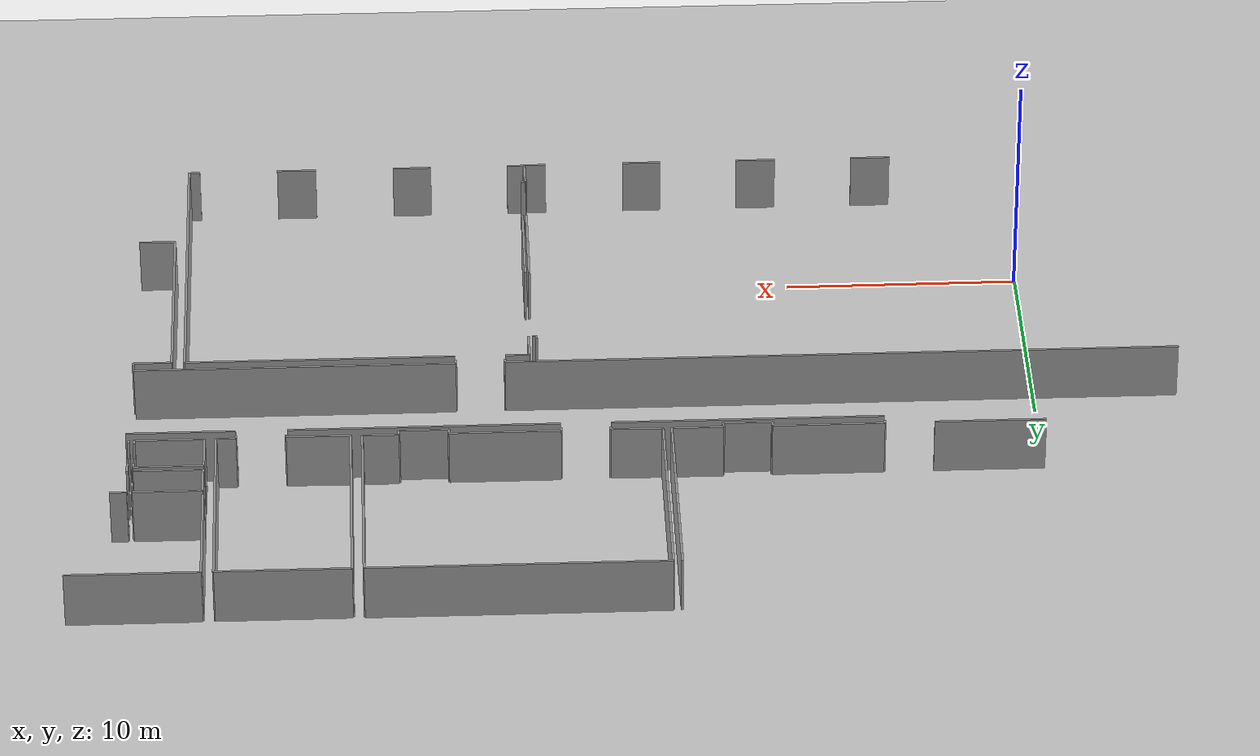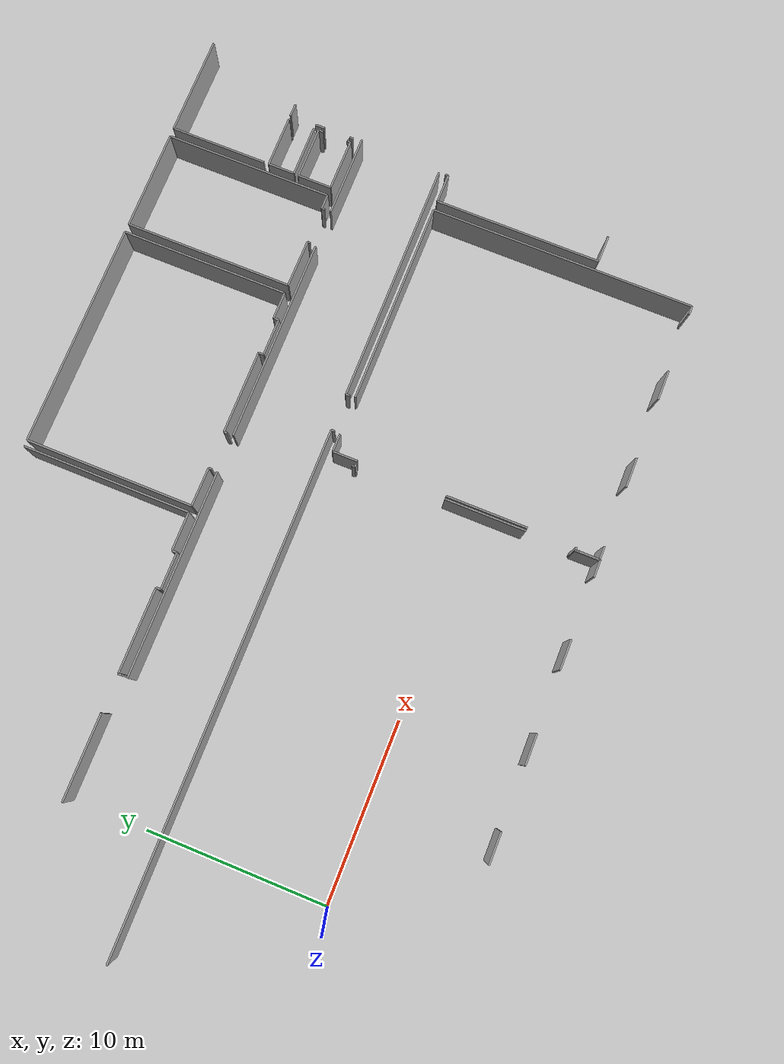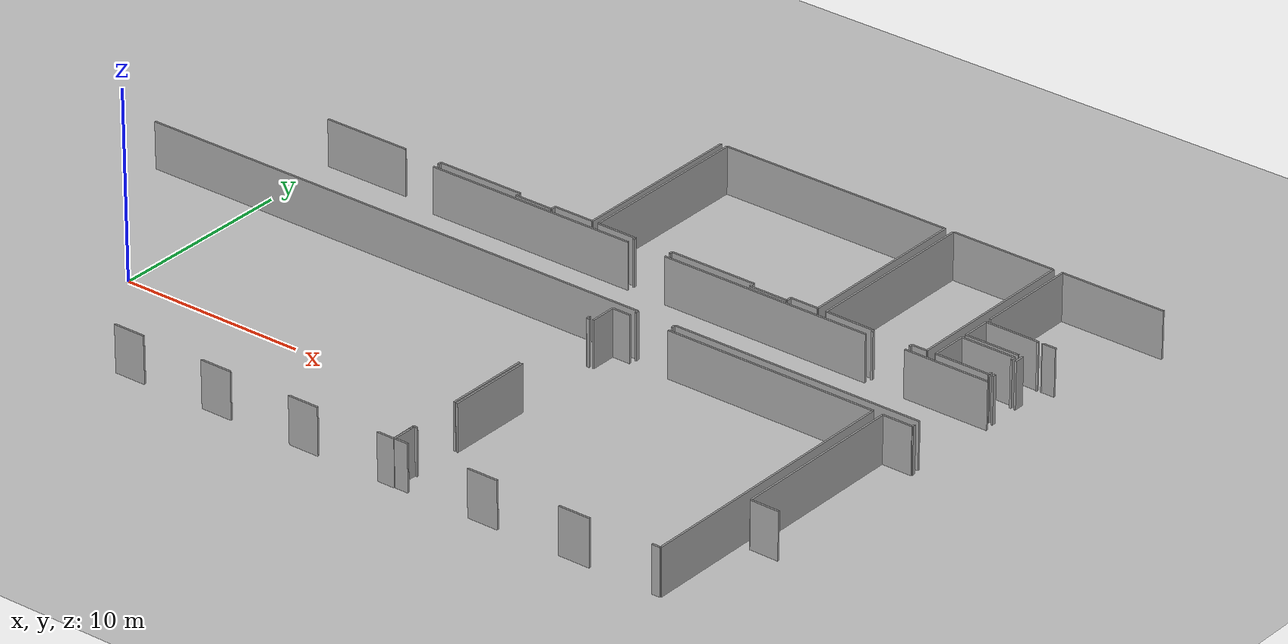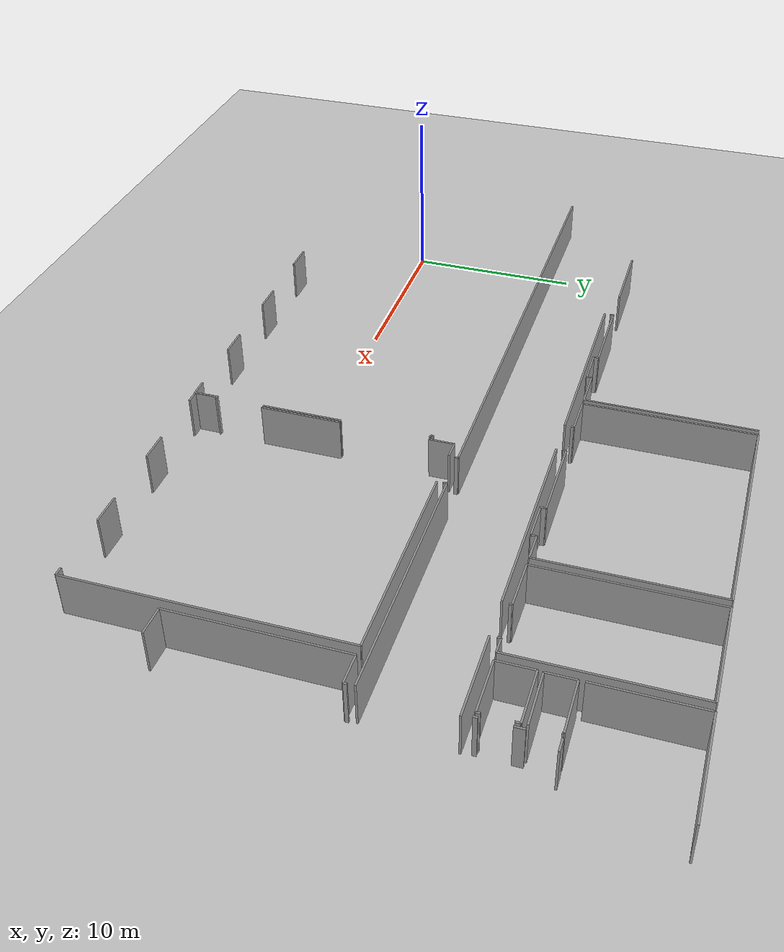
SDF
<sdf version="1.6">
 <world name="default">
  <model name="ground_plane">
   <static>1</static>
   <link name="link">
    <collision name="collision">
     <geometry><plane><normal>0 0 1</normal><size>100 100</size></plane></geometry>
     <surface><friction><ode><mu>100</mu><mu2>50</mu2></ode></friction></surface>
    </collision>
    <visual name="visual">
     <cast_shadows>0</cast_shadows>
     <geometry><plane><normal>0 0 1</normal><size>100 100</size></plane></geometry>
     <material>
      <script><uri>file://media/materials/scripts/gazebo.material</uri><name>Gazebo/Grey</name></script>
     </material>
    </visual>
   </link>
  </model>
  <model name="0510032194_A_40_1_102">
   <static>1</static>
   <link name="Wall_106">
    <collision name="Wall_106_Collision">
     <geometry><box><size>9.50472897386 0.1 2.5</size></box></geometry>
     <pose>4.75236448693 0 1.25 0 0 0</pose>
    </collision>
    <visual name="Wall_106_Visual">
     <pose>4.75236448693 0 1.25 0 0 0</pose>
     <geometry><box><size>9.50472897386 0.1 2.5</size></box></geometry>
     <material>
      <script><uri>file://media/materials/scripts/gazebo.material</uri><name>Gazebo/Grey</name></script>
      <ambient>1 1 1 1</ambient>
     </material>
    </visual>
    <pose>83.4700752568 -0.146064273365 0 0 0 -1.57079632679</pose>
   </link>
   <link name="Wall_107">
    <collision name="Wall_107_Collision">
     <geometry><box><size>2.18346384623 0.1 2.5</size></box></geometry>
     <pose>1.09173192312 0 1.25 0 0 0</pose>
    </collision>
    <visual name="Wall_107_Visual">
     <pose>1.09173192312 0 1.25 0 0 0</pose>
     <geometry><box><size>2.18346384623 0.1 2.5</size></box></geometry>
     <material>
      <script><uri>file://media/materials/scripts/gazebo.material</uri><name>Gazebo/Grey</name></script>
      <ambient>1 1 1 1</ambient>
     </material>
    </visual>
    <pose>83.4700752568 -9.65079324723 0 0 0 3.14159265359</pose>
   </link>
   <link name="Wall_108">
    <collision name="Wall_108_Collision">
     <geometry><box><size>0.278653513678 0.1 2.5</size></box></geometry>
     <pose>0.139326756839 0 1.25 0 0 0</pose>
    </collision>
    <visual name="Wall_108_Visual">
     <pose>0.139326756839 0 1.25 0 0 0</pose>
     <geometry><box><size>0.278653513678 0.1 2.5</size></box></geometry>
     <material>
      <script><uri>file://media/materials/scripts/gazebo.material</uri><name>Gazebo/Grey</name></script>
      <ambient>1 1 1 1</ambient>
     </material>
    </visual>
    <pose>81.2866114106 -9.65079324723 0 0 0 -1.57079632679</pose>
   </link>
   <link name="Wall_109">
    <collision name="Wall_109_Collision">
     <geometry><box><size>2.06663785213 0.1 2.5</size></box></geometry>
     <pose>1.03331892607 0 1.25 0 0 0</pose>
    </collision>
    <visual name="Wall_109_Visual">
     <pose>1.03331892607 0 1.25 0 0 0</pose>
     <geometry><box><size>2.06663785213 0.1 2.5</size></box></geometry>
     <material>
      <script><uri>file://media/materials/scripts/gazebo.material</uri><name>Gazebo/Grey</name></script>
      <ambient>1 1 1 1</ambient>
     </material>
    </visual>
    <pose>81.2866114106 -9.92944676091 0 0 0 3.14159265359</pose>
   </link>
   <link name="Wall_110">
    <collision name="Wall_110_Collision">
     <geometry><box><size>0.269119292179 0.1 2.5</size></box></geometry>
     <pose>0.13455964609 0 1.25 0 0 0</pose>
    </collision>
    <visual name="Wall_110_Visual">
     <pose>0.13455964609 0 1.25 0 0 0</pose>
     <geometry><box><size>0.269119292179 0.1 2.5</size></box></geometry>
     <material>
      <script><uri>file://media/materials/scripts/gazebo.material</uri><name>Gazebo/Grey</name></script>
      <ambient>1 1 1 1</ambient>
     </material>
    </visual>
    <pose>79.2199735584 -9.92944676091 0 0 0 1.57079632679</pose>
   </link>
   <link name="Wall_111">
    <collision name="Wall_111_Collision">
     <geometry><box><size>4.73888945388 0.1 2.5</size></box></geometry>
     <pose>2.36944472694 0 1.25 0 0 0</pose>
    </collision>
    <visual name="Wall_111_Visual">
     <pose>2.36944472694 0 1.25 0 0 0</pose>
     <geometry><box><size>4.73888945388 0.1 2.5</size></box></geometry>
     <material>
      <script><uri>file://media/materials/scripts/gazebo.material</uri><name>Gazebo/Grey</name></script>
      <ambient>1 1 1 1</ambient>
     </material>
    </visual>
    <pose>79.2199735584 -9.66032746873 0 0 0 3.14159265359</pose>
   </link>
   <link name="Wall_112">
    <collision name="Wall_112_Collision">
     <geometry><box><size>0.182675683921 0.1 2.5</size></box></geometry>
     <pose>0.0913378419607 0 1.25 0 0 0</pose>
    </collision>
    <visual name="Wall_112_Visual">
     <pose>0.0913378419607 0 1.25 0 0 0</pose>
     <geometry><box><size>0.182675683921 0.1 2.5</size></box></geometry>
     <material>
      <script><uri>file://media/materials/scripts/gazebo.material</uri><name>Gazebo/Grey</name></script>
      <ambient>1 1 1 1</ambient>
     </material>
    </visual>
    <pose>74.4810841045 -9.66032746873 0 0 0 -1.57079632679</pose>
   </link>
   <link name="Wall_114">
    <collision name="Wall_114_Collision">
     <geometry><box><size>4.72401606834 0.1 2.5</size></box></geometry>
     <pose>2.36200803417 0 1.25 0 0 0</pose>
    </collision>
    <visual name="Wall_114_Visual">
     <pose>2.36200803417 0 1.25 0 0 0</pose>
     <geometry><box><size>4.72401606834 0.1 2.5</size></box></geometry>
     <material>
      <script><uri>file://media/materials/scripts/gazebo.material</uri><name>Gazebo/Grey</name></script>
      <ambient>1 1 1 1</ambient>
     </material>
    </visual>
    <pose>72.3759279976 -9.66998881318 0 0 0 3.14159265359</pose>
   </link>
   <link name="Wall_118">
    <collision name="Wall_118_Collision">
     <geometry><box><size>9.49888131801 0.1 2.5</size></box></geometry>
     <pose>4.74944065901 0 1.25 0 0 0</pose>
    </collision>
    <visual name="Wall_118_Visual">
     <pose>4.74944065901 0 1.25 0 0 0</pose>
     <geometry><box><size>9.49888131801 0.1 2.5</size></box></geometry>
     <material>
      <script><uri>file://media/materials/scripts/gazebo.material</uri><name>Gazebo/Grey</name></script>
      <ambient>1 1 1 1</ambient>
     </material>
    </visual>
    <pose>83.8347910099 -9.65270009153 0 0 0 1.57079632679</pose>
   </link>
   <link name="Wall_119">
    <collision name="Wall_119_Collision">
     <geometry><box><size>12.6585223228 0.1 2.5</size></box></geometry>
     <pose>6.3292611614 0 1.25 0 0 0</pose>
    </collision>
    <visual name="Wall_119_Visual">
     <pose>6.3292611614 0 1.25 0 0 0</pose>
     <geometry><box><size>12.6585223228 0.1 2.5</size></box></geometry>
     <material>
      <script><uri>file://media/materials/scripts/gazebo.material</uri><name>Gazebo/Grey</name></script>
      <ambient>1 1 1 1</ambient>
     </material>
    </visual>
    <pose>83.8347910099 -0.153818773518 0 0 0 0.0</pose>
   </link>
   <link name="Wall_120">
    <collision name="Wall_120_Collision">
     <geometry><box><size>9.48782162107 0.1 2.5</size></box></geometry>
     <pose>4.74391081054 0 1.25 0 0 0</pose>
    </collision>
    <visual name="Wall_120_Visual">
     <pose>4.74391081054 0 1.25 0 0 0</pose>
     <geometry><box><size>9.48782162107 0.1 2.5</size></box></geometry>
     <material>
      <script><uri>file://media/materials/scripts/gazebo.material</uri><name>Gazebo/Grey</name></script>
      <ambient>1 1 1 1</ambient>
     </material>
    </visual>
    <pose>96.4933133327 -0.153818773518 0 0 0 -1.57079632679</pose>
   </link>
   <link name="Wall_121">
    <collision name="Wall_121_Collision">
     <geometry><box><size>1.53806061222 0.1 2.5</size></box></geometry>
     <pose>0.769030306112 0 1.25 0 0 0</pose>
    </collision>
    <visual name="Wall_121_Visual">
     <pose>0.769030306112 0 1.25 0 0 0</pose>
     <geometry><box><size>1.53806061222 0.1 2.5</size></box></geometry>
     <material>
      <script><uri>file://media/materials/scripts/gazebo.material</uri><name>Gazebo/Grey</name></script>
      <ambient>1 1 1 1</ambient>
     </material>
    </visual>
    <pose>96.4933133327 -9.64164039459 0 0 0 3.14159265359</pose>
   </link>
   <link name="Wall_122">
    <collision name="Wall_122_Collision">
     <geometry><box><size>0.298484694396 0.1 2.5</size></box></geometry>
     <pose>0.149242347198 0 1.25 0 0 0</pose>
    </collision>
    <visual name="Wall_122_Visual">
     <pose>0.149242347198 0 1.25 0 0 0</pose>
     <geometry><box><size>0.298484694396 0.1 2.5</size></box></geometry>
     <material>
      <script><uri>file://media/materials/scripts/gazebo.material</uri><name>Gazebo/Grey</name></script>
      <ambient>1 1 1 1</ambient>
     </material>
    </visual>
    <pose>94.9552527204 -9.64164039459 0 0 0 -1.57079632679</pose>
   </link>
   <link name="Wall_123">
    <collision name="Wall_123_Collision">
     <geometry><box><size>2.10502898403 0.1 2.5</size></box></geometry>
     <pose>1.05251449202 0 1.25 0 0 0</pose>
    </collision>
    <visual name="Wall_123_Visual">
     <pose>1.05251449202 0 1.25 0 0 0</pose>
     <geometry><box><size>2.10502898403 0.1 2.5</size></box></geometry>
     <material>
      <script><uri>file://media/materials/scripts/gazebo.material</uri><name>Gazebo/Grey</name></script>
      <ambient>1 1 1 1</ambient>
     </material>
    </visual>
    <pose>94.9552527204 -9.94012508899 0 0 0 3.14159265359</pose>
   </link>
   <link name="Wall_124">
    <collision name="Wall_124_Collision">
     <geometry><box><size>0.289331841757 0.1 2.5</size></box></geometry>
     <pose>0.144665920879 0 1.25 0 0 0</pose>
    </collision>
    <visual name="Wall_124_Visual">
     <pose>0.144665920879 0 1.25 0 0 0</pose>
     <geometry><box><size>0.289331841757 0.1 2.5</size></box></geometry>
     <material>
      <script><uri>file://media/materials/scripts/gazebo.material</uri><name>Gazebo/Grey</name></script>
      <ambient>1 1 1 1</ambient>
     </material>
    </visual>
    <pose>92.8502237364 -9.94012508899 0 0 0 1.57079632679</pose>
   </link>
   <link name="Wall_125">
    <collision name="Wall_125_Collision">
     <geometry><box><size>4.72007525679 0.1 2.5</size></box></geometry>
     <pose>2.36003762839 0 1.25 0 0 0</pose>
    </collision>
    <visual name="Wall_125_Visual">
     <pose>2.36003762839 0 1.25 0 0 0</pose>
     <geometry><box><size>4.72007525679 0.1 2.5</size></box></geometry>
     <material>
      <script><uri>file://media/materials/scripts/gazebo.material</uri><name>Gazebo/Grey</name></script>
      <ambient>1 1 1 1</ambient>
     </material>
    </visual>
    <pose>92.8502237364 -9.65079324723 0 0 0 3.14159265359</pose>
   </link>
   <link name="Wall_126">
    <collision name="Wall_126_Collision">
     <geometry><box><size>0.190938675887 0.1 2.5</size></box></geometry>
     <pose>0.0954693379437 0 1.25 0 0 0</pose>
    </collision>
    <visual name="Wall_126_Visual">
     <pose>0.0954693379437 0 1.25 0 0 0</pose>
     <geometry><box><size>0.190938675887 0.1 2.5</size></box></geometry>
     <material>
      <script><uri>file://media/materials/scripts/gazebo.material</uri><name>Gazebo/Grey</name></script>
      <ambient>1 1 1 1</ambient>
     </material>
    </visual>
    <pose>88.1301484796 -9.65079324723 0 0 0 -1.57079632679</pose>
   </link>
   <link name="Wall_127">
    <collision name="Wall_127_Collision">
     <geometry><box><size>0.160937658904 0.1 2.5</size></box></geometry>
     <pose>0.0804688294518 0 1.25 0 0 0</pose>
    </collision>
    <visual name="Wall_127_Visual">
     <pose>0.0804688294518 0 1.25 0 0 0</pose>
     <geometry><box><size>0.160937658904 0.1 2.5</size></box></geometry>
     <material>
      <script><uri>file://media/materials/scripts/gazebo.material</uri><name>Gazebo/Grey</name></script>
      <ambient>1 1 1 1</ambient>
     </material>
    </visual>
    <pose>86.0333824875 -9.84173192312 0 0 0 1.57079632679</pose>
   </link>
   <link name="Wall_128">
    <collision name="Wall_128_Collision">
     <geometry><box><size>2.19877096767 0.1 2.5</size></box></geometry>
     <pose>1.09938548383 0 1.25 0 0 0</pose>
    </collision>
    <visual name="Wall_128_Visual">
     <pose>1.09938548383 0 1.25 0 0 0</pose>
     <geometry><box><size>2.19877096767 0.1 2.5</size></box></geometry>
     <material>
      <script><uri>file://media/materials/scripts/gazebo.material</uri><name>Gazebo/Grey</name></script>
      <ambient>1 1 1 1</ambient>
     </material>
    </visual>
    <pose>86.0333824875 -9.68079426421 0 0 0 3.1288150894</pose>
   </link>
   <link name="Wall_129">
    <collision name="Wall_129_Collision">
     <geometry><box><size>9.48515203905 0.1 2.5</size></box></geometry>
     <pose>4.74257601953 0 1.25 0 0 0</pose>
    </collision>
    <visual name="Wall_129_Visual">
     <pose>4.74257601953 0 1.25 0 0 0</pose>
     <geometry><box><size>9.48515203905 0.1 2.5</size></box></geometry>
     <material>
      <script><uri>file://media/materials/scripts/gazebo.material</uri><name>Gazebo/Grey</name></script>
      <ambient>1 1 1 1</ambient>
     </material>
    </visual>
    <pose>96.9794315062 -9.64456422252 0 0 0 1.57079632679</pose>
   </link>
   <link name="Wall_130">
    <collision name="Wall_130_Collision">
     <geometry><box><size>5.65570019323 0.1 2.5</size></box></geometry>
     <pose>2.82785009661 0 1.25 0 0 0</pose>
    </collision>
    <visual name="Wall_130_Visual">
     <pose>2.82785009661 0 1.25 0 0 0</pose>
     <geometry><box><size>5.65570019323 0.1 2.5</size></box></geometry>
     <material>
      <script><uri>file://media/materials/scripts/gazebo.material</uri><name>Gazebo/Grey</name></script>
      <ambient>1 1 1 1</ambient>
     </material>
    </visual>
    <pose>96.9794315062 -0.159412183464 0 0 0 0.0</pose>
   </link>
   <link name="Wall_131">
    <collision name="Wall_131_Collision">
     <geometry><box><size>9.49023695718 0.1 2.5</size></box></geometry>
     <pose>4.74511847859 0 1.25 0 0 0</pose>
    </collision>
    <visual name="Wall_131_Visual">
     <pose>4.74511847859 0 1.25 0 0 0</pose>
     <geometry><box><size>9.49023695718 0.1 2.5</size></box></geometry>
     <material>
      <script><uri>file://media/materials/scripts/gazebo.material</uri><name>Gazebo/Grey</name></script>
      <ambient>1 1 1 1</ambient>
     </material>
    </visual>
    <pose>102.635131699 -0.159412183464 0 0 0 -1.57079632679</pose>
   </link>
   <link name="Wall_132">
    <collision name="Wall_132_Collision">
     <geometry><box><size>0.840791213261 0.1 2.5</size></box></geometry>
     <pose>0.420395606631 0 1.25 0 0 0</pose>
    </collision>
    <visual name="Wall_132_Visual">
     <pose>0.420395606631 0 1.25 0 0 0</pose>
     <geometry><box><size>0.840791213261 0.1 2.5</size></box></geometry>
     <material>
      <script><uri>file://media/materials/scripts/gazebo.material</uri><name>Gazebo/Grey</name></script>
      <ambient>1 1 1 1</ambient>
     </material>
    </visual>
    <pose>102.635131699 -9.64964914065 0 0 0 3.14159265359</pose>
   </link>
   <link name="Wall_133">
    <collision name="Wall_133_Collision">
     <geometry><box><size>0.171997355843 0.1 2.5</size></box></geometry>
     <pose>0.0859986779213 0 1.25 0 0 0</pose>
    </collision>
    <visual name="Wall_133_Visual">
     <pose>0.0859986779213 0 1.25 0 0 0</pose>
     <geometry><box><size>0.171997355843 0.1 2.5</size></box></geometry>
     <material>
      <script><uri>file://media/materials/scripts/gazebo.material</uri><name>Gazebo/Grey</name></script>
      <ambient>1 1 1 1</ambient>
     </material>
    </visual>
    <pose>101.794340486 -9.64964914065 0 0 0 -1.57079632679</pose>
   </link>
   <link name="Wall_134">
    <collision name="Wall_134_Collision">
     <geometry><box><size>0.148098240618 0.1 2.5</size></box></geometry>
     <pose>0.0740491203092 0 1.25 0 0 0</pose>
    </collision>
    <visual name="Wall_134_Visual">
     <pose>0.0740491203092 0 1.25 0 0 0</pose>
     <geometry><box><size>0.148098240618 0.1 2.5</size></box></geometry>
     <material>
      <script><uri>file://media/materials/scripts/gazebo.material</uri><name>Gazebo/Grey</name></script>
      <ambient>1 1 1 1</ambient>
     </material>
    </visual>
    <pose>99.6833367233 -9.82164649649 0 0 0 1.57079632679</pose>
   </link>
   <link name="Wall_135">
    <collision name="Wall_135_Collision">
     <geometry><box><size>2.70406055727 0.1 2.5</size></box></geometry>
     <pose>1.35203027864 0 1.25 0 0 0</pose>
    </collision>
    <visual name="Wall_135_Visual">
     <pose>1.35203027864 0 1.25 0 0 0</pose>
     <geometry><box><size>2.70406055727 0.1 2.5</size></box></geometry>
     <material>
      <script><uri>file://media/materials/scripts/gazebo.material</uri><name>Gazebo/Grey</name></script>
      <ambient>1 1 1 1</ambient>
     </material>
    </visual>
    <pose>99.6833367233 -9.67354825587 0 0 0 3.13087374114</pose>
   </link>
   <link name="Wall_136">
    <collision name="Wall_136_Collision">
     <geometry><box><size>0.216109020645 0.1 2.5</size></box></geometry>
     <pose>0.108054510322 0 1.25 0 0 0</pose>
    </collision>
    <visual name="Wall_136_Visual">
     <pose>0.108054510322 0 1.25 0 0 0</pose>
     <geometry><box><size>0.216109020645 0.1 2.5</size></box></geometry>
     <material>
      <script><uri>file://media/materials/scripts/gazebo.material</uri><name>Gazebo/Grey</name></script>
      <ambient>1 1 1 1</ambient>
     </material>
    </visual>
    <pose>106.305171362 -9.68969287094 0 0 0 1.57079632679</pose>
   </link>
   <link name="Wall_137">
    <collision name="Wall_137_Collision">
     <geometry><box><size>0.534933387572 0.1 2.5</size></box></geometry>
     <pose>0.267466693786 0 1.25 0 0 0</pose>
    </collision>
    <visual name="Wall_137_Visual">
     <pose>0.267466693786 0 1.25 0 0 0</pose>
     <geometry><box><size>0.534933387572 0.1 2.5</size></box></geometry>
     <material>
      <script><uri>file://media/materials/scripts/gazebo.material</uri><name>Gazebo/Grey</name></script>
      <ambient>1 1 1 1</ambient>
     </material>
    </visual>
    <pose>106.305171362 -7.97022780433 0 0 0 1.57079632679</pose>
   </link>
   <link name="Wall_138">
    <collision name="Wall_138_Collision">
     <geometry><box><size>0.0480524763551 0.1 2.5</size></box></geometry>
     <pose>0.0240262381776 0 1.25 0 0 0</pose>
    </collision>
    <visual name="Wall_138_Visual">
     <pose>0.0240262381776 0 1.25 0 0 0</pose>
     <geometry><box><size>0.0480524763551 0.1 2.5</size></box></geometry>
     <material>
      <script><uri>file://media/materials/scripts/gazebo.material</uri><name>Gazebo/Grey</name></script>
      <ambient>1 1 1 1</ambient>
     </material>
    </visual>
    <pose>106.305171362 -5.95965117462 0 0 0 1.57079632679</pose>
   </link>
   <link name="Wall_139">
    <collision name="Wall_139_Collision">
     <geometry><box><size>0.704006915489 0.1 2.5</size></box></geometry>
     <pose>0.352003457744 0 1.25 0 0 0</pose>
    </collision>
    <visual name="Wall_139_Visual">
     <pose>0.352003457744 0 1.25 0 0 0</pose>
     <geometry><box><size>0.704006915489 0.1 2.5</size></box></geometry>
     <material>
      <script><uri>file://media/materials/scripts/gazebo.material</uri><name>Gazebo/Grey</name></script>
      <ambient>1 1 1 1</ambient>
     </material>
    </visual>
    <pose>106.305171362 -5.91159869826 0 0 0 0.0</pose>
   </link>
   <link name="Wall_182">
    <collision name="Wall_182_Collision">
     <geometry><box><size>9.42324316079 0.1 2.5</size></box></geometry>
     <pose>4.71162158039 0 1.25 0 0 0</pose>
    </collision>
    <visual name="Wall_182_Visual">
     <pose>4.71162158039 0 1.25 0 0 0</pose>
     <geometry><box><size>9.42324316079 0.1 2.5</size></box></geometry>
     <material>
      <script><uri>file://media/materials/scripts/gazebo.material</uri><name>Gazebo/Grey</name></script>
      <ambient>1 1 1 1</ambient>
     </material>
    </visual>
    <pose>104.569180311 -24.8459269806 0 0 0 1.57079632679</pose>
   </link>
   <link name="Wall_183">
    <collision name="Wall_183_Collision">
     <geometry><box><size>1.63136885996 0.1 2.5</size></box></geometry>
     <pose>0.815684429981 0 1.25 0 0 0</pose>
    </collision>
    <visual name="Wall_183_Visual">
     <pose>0.815684429981 0 1.25 0 0 0</pose>
     <geometry><box><size>1.63136885996 0.1 2.5</size></box></geometry>
     <material>
      <script><uri>file://media/materials/scripts/gazebo.material</uri><name>Gazebo/Grey</name></script>
      <ambient>1 1 1 1</ambient>
     </material>
    </visual>
    <pose>104.569180311 -15.4226838198 0 0 0 0.0</pose>
   </link>
   <link name="Wall_184">
    <collision name="Wall_184_Collision">
     <geometry><box><size>0.181658700295 0.1 2.5</size></box></geometry>
     <pose>0.0908293501475 0 1.25 0 0 0</pose>
    </collision>
    <visual name="Wall_184_Visual">
     <pose>0.0908293501475 0 1.25 0 0 0</pose>
     <geometry><box><size>0.181658700295 0.1 2.5</size></box></geometry>
     <material>
      <script><uri>file://media/materials/scripts/gazebo.material</uri><name>Gazebo/Grey</name></script>
      <ambient>1 1 1 1</ambient>
     </material>
    </visual>
    <pose>106.200549171 -15.4226838198 0 0 0 1.57079632679</pose>
   </link>
   <link name="Wall_189">
    <collision name="Wall_189_Collision">
     <geometry><box><size>1.55278916179 0.1 2.5</size></box></geometry>
     <pose>0.776394580896 0 1.25 0 0 0</pose>
    </collision>
    <visual name="Wall_189_Visual">
     <pose>0.776394580896 0 1.25 0 0 0</pose>
     <geometry><box><size>1.55278916179 0.1 2.5</size></box></geometry>
     <material>
      <script><uri>file://media/materials/scripts/gazebo.material</uri><name>Gazebo/Grey</name></script>
      <ambient>1 1 1 1</ambient>
     </material>
    </visual>
    <pose>106.121860063 -24.8643598088 0 0 0 3.12972158853</pose>
   </link>
   <link name="Wall_190">
    <collision name="Wall_190_Collision">
     <geometry><box><size>0.762737719923 0.1 2.5</size></box></geometry>
     <pose>0.381368859961 0 1.25 0 0 0</pose>
    </collision>
    <visual name="Wall_190_Visual">
     <pose>0.381368859961 0 1.25 0 0 0</pose>
     <geometry><box><size>0.762737719923 0.1 2.5</size></box></geometry>
     <material>
      <script><uri>file://media/materials/scripts/gazebo.material</uri><name>Gazebo/Grey</name></script>
      <ambient>1 1 1 1</ambient>
     </material>
    </visual>
    <pose>89.1075968677 -30.4234465575 0 0 0 0.0</pose>
   </link>
   <link name="Wall_191">
    <collision name="Wall_191_Collision">
     <geometry><box><size>1.68209091834 0.1 2.5</size></box></geometry>
     <pose>0.841045459168 0 1.25 0 0 0</pose>
    </collision>
    <visual name="Wall_191_Visual">
     <pose>0.841045459168 0 1.25 0 0 0</pose>
     <geometry><box><size>1.68209091834 0.1 2.5</size></box></geometry>
     <material>
      <script><uri>file://media/materials/scripts/gazebo.material</uri><name>Gazebo/Grey</name></script>
      <ambient>1 1 1 1</ambient>
     </material>
    </visual>
    <pose>93.2731618021 -30.4234465575 0 0 0 0.0</pose>
   </link>
   <link name="Wall_192">
    <collision name="Wall_192_Collision">
     <geometry><box><size>1.71336316485 0.1 2.5</size></box></geometry>
     <pose>0.856681582427 0 1.25 0 0 0</pose>
    </collision>
    <visual name="Wall_192_Visual">
     <pose>0.856681582427 0 1.25 0 0 0</pose>
     <geometry><box><size>1.71336316485 0.1 2.5</size></box></geometry>
     <material>
      <script><uri>file://media/materials/scripts/gazebo.material</uri><name>Gazebo/Grey</name></script>
      <ambient>1 1 1 1</ambient>
     </material>
    </visual>
    <pose>98.39316587 -30.4234465575 0 0 0 0.0</pose>
   </link>
   <link name="Wall_193">
    <collision name="Wall_193_Collision">
     <geometry><box><size>0.475312722465 0.1 2.5</size></box></geometry>
     <pose>0.237656361233 0 1.25 0 0 0</pose>
    </collision>
    <visual name="Wall_193_Visual">
     <pose>0.237656361233 0 1.25 0 0 0</pose>
     <geometry><box><size>0.475312722465 0.1 2.5</size></box></geometry>
     <material>
      <script><uri>file://media/materials/scripts/gazebo.material</uri><name>Gazebo/Grey</name></script>
      <ambient>1 1 1 1</ambient>
     </material>
    </visual>
    <pose>103.544442184 -30.4234465575 0 0 0 0.0</pose>
   </link>
   <link name="Wall_194">
    <collision name="Wall_194_Collision">
     <geometry><box><size>15.0226278857 0.1 2.5</size></box></geometry>
     <pose>7.51131394285 0 1.25 0 0 0</pose>
    </collision>
    <visual name="Wall_194_Visual">
     <pose>7.51131394285 0 1.25 0 0 0</pose>
     <geometry><box><size>15.0226278857 0.1 2.5</size></box></geometry>
     <material>
      <script><uri>file://media/materials/scripts/gazebo.material</uri><name>Gazebo/Grey</name></script>
      <ambient>1 1 1 1</ambient>
     </material>
    </visual>
    <pose>104.019754907 -30.4234465575 0 0 0 1.57079632679</pose>
   </link>
   <link name="Wall_195">
    <collision name="Wall_195_Collision">
     <geometry><box><size>11.5328485711 0.1 2.5</size></box></geometry>
     <pose>5.76642428557 0 1.25 0 0 0</pose>
    </collision>
    <visual name="Wall_195_Visual">
     <pose>5.76642428557 0 1.25 0 0 0</pose>
     <geometry><box><size>11.5328485711 0.1 2.5</size></box></geometry>
     <material>
      <script><uri>file://media/materials/scripts/gazebo.material</uri><name>Gazebo/Grey</name></script>
      <ambient>1 1 1 1</ambient>
     </material>
    </visual>
    <pose>104.019754907 -15.4008186718 0 0 0 3.14159265359</pose>
   </link>
   <link name="Wall_196">
    <collision name="Wall_196_Collision">
     <geometry><box><size>1.01698362656 0.1 2.5</size></box></geometry>
     <pose>0.508491813282 0 1.25 0 0 0</pose>
    </collision>
    <visual name="Wall_196_Visual">
     <pose>0.508491813282 0 1.25 0 0 0</pose>
     <geometry><box><size>1.01698362656 0.1 2.5</size></box></geometry>
     <material>
      <script><uri>file://media/materials/scripts/gazebo.material</uri><name>Gazebo/Grey</name></script>
      <ambient>1 1 1 1</ambient>
     </material>
    </visual>
    <pose>90.3125953422 -15.4008186718 0 0 0 3.14159265359</pose>
   </link>
   <link name="Wall_197">
    <collision name="Wall_197_Collision">
     <geometry><box><size>1.40445438828 0.1 2.5</size></box></geometry>
     <pose>0.702227194142 0 1.25 0 0 0</pose>
    </collision>
    <visual name="Wall_197_Visual">
     <pose>0.702227194142 0 1.25 0 0 0</pose>
     <geometry><box><size>1.40445438828 0.1 2.5</size></box></geometry>
     <material>
      <script><uri>file://media/materials/scripts/gazebo.material</uri><name>Gazebo/Grey</name></script>
      <ambient>1 1 1 1</ambient>
     </material>
    </visual>
    <pose>89.2956117157 -15.4008186718 0 0 0 -1.57079632679</pose>
   </link>
   <link name="Wall_198">
    <collision name="Wall_198_Collision">
     <geometry><box><size>4.57375673752 0.1 2.5</size></box></geometry>
     <pose>2.28687836876 0 1.25 0 0 0</pose>
    </collision>
    <visual name="Wall_198_Visual">
     <pose>2.28687836876 0 1.25 0 0 0</pose>
     <geometry><box><size>4.57375673752 0.1 2.5</size></box></geometry>
     <material>
      <script><uri>file://media/materials/scripts/gazebo.material</uri><name>Gazebo/Grey</name></script>
      <ambient>1 1 1 1</ambient>
     </material>
    </visual>
    <pose>89.2956117157 -21.8103579782 0 0 0 -1.57079632679</pose>
   </link>
   <link name="Wall_199">
    <collision name="Wall_199_Collision">
     <geometry><box><size>0.202888233499 0.1 2.5</size></box></geometry>
     <pose>0.10144411675 0 1.25 0 0 0</pose>
    </collision>
    <visual name="Wall_199_Visual">
     <pose>0.10144411675 0 1.25 0 0 0</pose>
     <geometry><box><size>0.202888233499 0.1 2.5</size></box></geometry>
     <material>
      <script><uri>file://media/materials/scripts/gazebo.material</uri><name>Gazebo/Grey</name></script>
      <ambient>1 1 1 1</ambient>
     </material>
    </visual>
    <pose>89.2956117157 -29.0886555476 0 0 0 3.14159265359</pose>
   </link>
   <link name="Wall_200">
    <collision name="Wall_200_Collision">
     <geometry><box><size>1.3348738733 0.1 2.5</size></box></geometry>
     <pose>0.667436936649 0 1.25 0 0 0</pose>
    </collision>
    <visual name="Wall_200_Visual">
     <pose>0.667436936649 0 1.25 0 0 0</pose>
     <geometry><box><size>1.3348738733 0.1 2.5</size></box></geometry>
     <material>
      <script><uri>file://media/materials/scripts/gazebo.material</uri><name>Gazebo/Grey</name></script>
      <ambient>1 1 1 1</ambient>
     </material>
    </visual>
    <pose>89.0927234822 -29.0886555476 0 0 0 -1.5596539308</pose>
   </link>
   <link name="Wall_216">
    <collision name="Wall_216_Collision">
     <geometry><box><size>11.5478490796 0.1 2.5</size></box></geometry>
     <pose>5.77392453981 0 1.25 0 0 0</pose>
    </collision>
    <visual name="Wall_216_Visual">
     <pose>5.77392453981 0 1.25 0 0 0</pose>
     <geometry><box><size>11.5478490796 0.1 2.5</size></box></geometry>
     <material>
      <script><uri>file://media/materials/scripts/gazebo.material</uri><name>Gazebo/Grey</name></script>
      <ambient>1 1 1 1</ambient>
     </material>
    </visual>
    <pose>74.4550238991 -10.176955151 0 0 0 0.0</pose>
   </link>
   <link name="Wall_217">
    <collision name="Wall_217_Collision">
     <geometry><box><size>11.4867029391 0.1 2.5</size></box></geometry>
     <pose>5.74335146954 0 1.25 0 0 0</pose>
    </collision>
    <visual name="Wall_217_Visual">
     <pose>5.74335146954 0 1.25 0 0 0</pose>
     <geometry><box><size>11.4867029391 0.1 2.5</size></box></geometry>
     <material>
      <script><uri>file://media/materials/scripts/gazebo.material</uri><name>Gazebo/Grey</name></script>
      <ambient>1 1 1 1</ambient>
     </material>
    </visual>
    <pose>88.1305298485 -10.176955151 0 0 0 0.0</pose>
   </link>
   <link name="Wall_218">
    <collision name="Wall_218_Collision">
     <geometry><box><size>4.63464863216 0.1 2.5</size></box></geometry>
     <pose>2.31732431608 0 1.25 0 0 0</pose>
    </collision>
    <visual name="Wall_218_Visual">
     <pose>2.31732431608 0 1.25 0 0 0</pose>
     <geometry><box><size>4.63464863216 0.1 2.5</size></box></geometry>
     <material>
      <script><uri>file://media/materials/scripts/gazebo.material</uri><name>Gazebo/Grey</name></script>
      <ambient>1 1 1 1</ambient>
     </material>
    </visual>
    <pose>101.800823757 -10.176955151 0 0 0 0.0</pose>
   </link>
   <link name="Wall_228">
    <collision name="Wall_228_Collision">
     <geometry><box><size>13.7248296552 0.1 2.5</size></box></geometry>
     <pose>6.86241482762 0 1.25 0 0 0</pose>
    </collision>
    <visual name="Wall_228_Visual">
     <pose>6.86241482762 0 1.25 0 0 0</pose>
     <geometry><box><size>13.7248296552 0.1 2.5</size></box></geometry>
     <material>
      <script><uri>file://media/materials/scripts/gazebo.material</uri><name>Gazebo/Grey</name></script>
      <ambient>1 1 1 1</ambient>
     </material>
    </visual>
    <pose>106.180463745 -14.8777077189 0 0 0 3.14159265359</pose>
   </link>
   <link name="Wall_229">
    <collision name="Wall_229_Collision">
     <geometry><box><size>0.214075053392 0.1 2.5</size></box></geometry>
     <pose>0.107037526696 0 1.25 0 0 0</pose>
    </collision>
    <visual name="Wall_229_Visual">
     <pose>0.107037526696 0 1.25 0 0 0</pose>
     <geometry><box><size>0.214075053392 0.1 2.5</size></box></geometry>
     <material>
      <script><uri>file://media/materials/scripts/gazebo.material</uri><name>Gazebo/Grey</name></script>
      <ambient>1 1 1 1</ambient>
     </material>
    </visual>
    <pose>92.4556340893 -14.8777077189 0 0 0 -1.57079632679</pose>
   </link>
   <link name="Wall_230">
    <collision name="Wall_230_Collision">
     <geometry><box><size>0.202888233499 0.1 2.5</size></box></geometry>
     <pose>0.10144411675 0 1.25 0 0 0</pose>
    </collision>
    <visual name="Wall_230_Visual">
     <pose>0.10144411675 0 1.25 0 0 0</pose>
     <geometry><box><size>0.202888233499 0.1 2.5</size></box></geometry>
     <material>
      <script><uri>file://media/materials/scripts/gazebo.material</uri><name>Gazebo/Grey</name></script>
      <ambient>1 1 1 1</ambient>
     </material>
    </visual>
    <pose>90.3464100478 -15.0917827723 0 0 0 1.57079632679</pose>
   </link>
   <link name="Wall_231">
    <collision name="Wall_231_Collision">
     <geometry><box><size>28.8420370182 0.1 2.5</size></box></geometry>
     <pose>14.4210185091 0 1.25 0 0 0</pose>
    </collision>
    <visual name="Wall_231_Visual">
     <pose>14.4210185091 0 1.25 0 0 0</pose>
     <geometry><box><size>28.8420370182 0.1 2.5</size></box></geometry>
     <material>
      <script><uri>file://media/materials/scripts/gazebo.material</uri><name>Gazebo/Grey</name></script>
      <ambient>1 1 1 1</ambient>
     </material>
    </visual>
    <pose>90.3464100478 -14.8888945388 0 0 0 3.14159265359</pose>
   </link>
   <link name="Wall_238">
    <collision name="Wall_238_Collision">
     <geometry><box><size>1.52128038239 0.1 2.5</size></box></geometry>
     <pose>0.760640191193 0 1.25 0 0 0</pose>
    </collision>
    <visual name="Wall_238_Visual">
     <pose>0.760640191193 0 1.25 0 0 0</pose>
     <geometry><box><size>1.52128038239 0.1 2.5</size></box></geometry>
     <material>
      <script><uri>file://media/materials/scripts/gazebo.material</uri><name>Gazebo/Grey</name></script>
      <ambient>1 1 1 1</ambient>
     </material>
    </visual>
    <pose>103.146293095 -7.43529441676 0 0 0 1.57079632679</pose>
   </link>
   <link name="Wall_239">
    <collision name="Wall_239_Collision">
     <geometry><box><size>2.91709040984 0.1 2.5</size></box></geometry>
     <pose>1.45854520492 0 1.25 0 0 0</pose>
    </collision>
    <visual name="Wall_239_Visual">
     <pose>1.45854520492 0 1.25 0 0 0</pose>
     <geometry><box><size>2.91709040984 0.1 2.5</size></box></geometry>
     <material>
      <script><uri>file://media/materials/scripts/gazebo.material</uri><name>Gazebo/Grey</name></script>
      <ambient>1 1 1 1</ambient>
     </material>
    </visual>
    <pose>103.146293095 -5.91401403437 0 0 0 0.0</pose>
   </link>
   <link name="Wall_240">
    <collision name="Wall_240_Collision">
     <geometry><box><size>0.0836469032849 0.1 2.5</size></box></geometry>
     <pose>0.0418234516424 0 1.25 0 0 0</pose>
    </collision>
    <visual name="Wall_240_Visual">
     <pose>0.0418234516424 0 1.25 0 0 0</pose>
     <geometry><box><size>0.0836469032849 0.1 2.5</size></box></geometry>
     <material>
      <script><uri>file://media/materials/scripts/gazebo.material</uri><name>Gazebo/Grey</name></script>
      <ambient>1 1 1 1</ambient>
     </material>
    </visual>
    <pose>106.063383505 -5.91401403437 0 0 0 -1.57079632679</pose>
   </link>
   <link name="Wall_241">
    <collision name="Wall_241_Collision">
     <geometry><box><size>2.91712832711 0.1 2.5</size></box></geometry>
     <pose>1.45856416355 0 1.25 0 0 0</pose>
    </collision>
    <visual name="Wall_241_Visual">
     <pose>1.45856416355 0 1.25 0 0 0</pose>
     <geometry><box><size>2.91712832711 0.1 2.5</size></box></geometry>
     <material>
      <script><uri>file://media/materials/scripts/gazebo.material</uri><name>Gazebo/Grey</name></script>
      <ambient>1 1 1 1</ambient>
     </material>
    </visual>
    <pose>106.063383505 -7.42042103122 0 0 0 -3.13649399206</pose>
   </link>
   <link name="Wall_242">
    <collision name="Wall_242_Collision">
     <geometry><box><size>5.47569409133 0.1 2.5</size></box></geometry>
     <pose>2.73784704566 0 1.25 0 0 0</pose>
    </collision>
    <visual name="Wall_242_Visual">
     <pose>2.73784704566 0 1.25 0 0 0</pose>
     <geometry><box><size>5.47569409133 0.1 2.5</size></box></geometry>
     <material>
      <script><uri>file://media/materials/scripts/gazebo.material</uri><name>Gazebo/Grey</name></script>
      <ambient>1 1 1 1</ambient>
     </material>
    </visual>
    <pose>103.139809824 -5.62175836469 0 0 0 1.57079632679</pose>
   </link>
   <link name="Wall_243">
    <collision name="Wall_243_Collision">
     <geometry><box><size>5.63803010272 0.1 2.5</size></box></geometry>
     <pose>2.81901505136 0 1.25 0 0 0</pose>
    </collision>
    <visual name="Wall_243_Visual">
     <pose>2.81901505136 0 1.25 0 0 0</pose>
     <geometry><box><size>5.63803010272 0.1 2.5</size></box></geometry>
     <material>
      <script><uri>file://media/materials/scripts/gazebo.material</uri><name>Gazebo/Grey</name></script>
      <ambient>1 1 1 1</ambient>
     </material>
    </visual>
    <pose>103.139809824 -0.146064273365 0 0 0 0.0</pose>
   </link>
   <link name="Wall_253">
    <collision name="Wall_253_Collision">
     <geometry><box><size>1.92794671006 0.1 2.5</size></box></geometry>
     <pose>0.963973355029 0 1.25 0 0 0</pose>
    </collision>
    <visual name="Wall_253_Visual">
     <pose>0.963973355029 0 1.25 0 0 0</pose>
     <geometry><box><size>1.92794671006 0.1 2.5</size></box></geometry>
     <material>
      <script><uri>file://media/materials/scripts/gazebo.material</uri><name>Gazebo/Grey</name></script>
      <ambient>1 1 1 1</ambient>
     </material>
    </visual>
    <pose>103.12112275 -9.63363164853 0 0 0 1.57079632679</pose>
   </link>
   <link name="Wall_254">
    <collision name="Wall_254_Collision">
     <geometry><box><size>2.94365910709 0.1 2.5</size></box></geometry>
     <pose>1.47182955354 0 1.25 0 0 0</pose>
    </collision>
    <visual name="Wall_254_Visual">
     <pose>1.47182955354 0 1.25 0 0 0</pose>
     <geometry><box><size>2.94365910709 0.1 2.5</size></box></geometry>
     <material>
      <script><uri>file://media/materials/scripts/gazebo.material</uri><name>Gazebo/Grey</name></script>
      <ambient>1 1 1 1</ambient>
     </material>
    </visual>
    <pose>103.12112275 -7.70568493847 0 0 0 0.0</pose>
   </link>
   <link name="Wall_255">
    <collision name="Wall_255_Collision">
     <geometry><box><size>0.267085324926 0.1 2.5</size></box></geometry>
     <pose>0.133542662463 0 1.25 0 0 0</pose>
    </collision>
    <visual name="Wall_255_Visual">
     <pose>0.133542662463 0 1.25 0 0 0</pose>
     <geometry><box><size>0.267085324926 0.1 2.5</size></box></geometry>
     <material>
      <script><uri>file://media/materials/scripts/gazebo.material</uri><name>Gazebo/Grey</name></script>
      <ambient>1 1 1 1</ambient>
     </material>
    </visual>
    <pose>106.064781857 -7.70568493847 0 0 0 -1.57079632679</pose>
   </link>
   <link name="Wall_256">
    <collision name="Wall_256_Collision">
     <geometry><box><size>0.203523848266 0.1 2.5</size></box></geometry>
     <pose>0.101761924133 0 1.25 0 0 0</pose>
    </collision>
    <visual name="Wall_256_Visual">
     <pose>0.101761924133 0 1.25 0 0 0</pose>
     <geometry><box><size>0.203523848266 0.1 2.5</size></box></geometry>
     <material>
      <script><uri>file://media/materials/scripts/gazebo.material</uri><name>Gazebo/Grey</name></script>
      <ambient>1 1 1 1</ambient>
     </material>
    </visual>
    <pose>106.064781857 -9.43366724296 0 0 0 -1.57079632679</pose>
   </link>
   <link name="Wall_257">
    <collision name="Wall_257_Collision">
     <geometry><box><size>2.94366125911 0.1 2.5</size></box></geometry>
     <pose>1.47183062955 0 1.25 0 0 0</pose>
    </collision>
    <visual name="Wall_257_Visual">
     <pose>1.47183062955 0 1.25 0 0 0</pose>
     <geometry><box><size>2.94366125911 0.1 2.5</size></box></geometry>
     <material>
      <script><uri>file://media/materials/scripts/gazebo.material</uri><name>Gazebo/Grey</name></script>
      <ambient>1 1 1 1</ambient>
     </material>
    </visual>
    <pose>106.064781857 -9.63719109122 0 0 0 3.14038346434</pose>
   </link>
   <link name="Wall_267">
    <collision name="Wall_267_Collision">
     <geometry><box><size>0.184836774128 0.1 2.5</size></box></geometry>
     <pose>0.092418387064 0 1.25 0 0 0</pose>
    </collision>
    <visual name="Wall_267_Visual">
     <pose>0.092418387064 0 1.25 0 0 0</pose>
     <geometry><box><size>0.184836774128 0.1 2.5</size></box></geometry>
     <material>
      <script><uri>file://media/materials/scripts/gazebo.material</uri><name>Gazebo/Grey</name></script>
      <ambient>1 1 1 1</ambient>
     </material>
    </visual>
    <pose>88.962549578 -16.6261568189 0 0 0 -1.57079632679</pose>
   </link>
   <link name="Wall_268">
    <collision name="Wall_268_Collision">
     <geometry><box><size>0.167166683616 0.1 2.5</size></box></geometry>
     <pose>0.0835833418082 0 1.25 0 0 0</pose>
    </collision>
    <visual name="Wall_268_Visual">
     <pose>0.0835833418082 0 1.25 0 0 0</pose>
     <geometry><box><size>0.167166683616 0.1 2.5</size></box></geometry>
     <material>
      <script><uri>file://media/materials/scripts/gazebo.material</uri><name>Gazebo/Grey</name></script>
      <ambient>1 1 1 1</ambient>
     </material>
    </visual>
    <pose>88.962549578 -16.810993593 0 0 0 0.0</pose>
   </link>
   <link name="Wall_269">
    <collision name="Wall_269_Collision">
     <geometry><box><size>4.55125597478 0.1 2.5</size></box></geometry>
     <pose>2.27562798739 0 1.25 0 0 0</pose>
    </collision>
    <visual name="Wall_269_Visual">
     <pose>2.27562798739 0 1.25 0 0 0</pose>
     <geometry><box><size>4.55125597478 0.1 2.5</size></box></geometry>
     <material>
      <script><uri>file://media/materials/scripts/gazebo.material</uri><name>Gazebo/Grey</name></script>
      <ambient>1 1 1 1</ambient>
     </material>
    </visual>
    <pose>89.1297162616 -21.8116292078 0 0 0 -1.57079632679</pose>
   </link>
   <link name="Wall_270">
    <collision name="Wall_270_Collision">
     <geometry><box><size>1.38843689617 0.1 2.5</size></box></geometry>
     <pose>0.694218448083 0 1.25 0 0 0</pose>
    </collision>
    <visual name="Wall_270_Visual">
     <pose>0.694218448083 0 1.25 0 0 0</pose>
     <geometry><box><size>1.38843689617 0.1 2.5</size></box></geometry>
     <material>
      <script><uri>file://media/materials/scripts/gazebo.material</uri><name>Gazebo/Grey</name></script>
      <ambient>1 1 1 1</ambient>
     </material>
    </visual>
    <pose>89.1297162616 -29.0681887522 0 0 0 -1.57079632679</pose>
   </link>
   <link name="Wall_271">
    <collision name="Wall_271_Collision">
     <geometry><box><size>0.972744838808 0.1 2.5</size></box></geometry>
     <pose>0.486372419404 0 1.25 0 0 0</pose>
    </collision>
    <visual name="Wall_271_Visual">
     <pose>0.486372419404 0 1.25 0 0 0</pose>
     <geometry><box><size>0.972744838808 0.1 2.5</size></box></geometry>
     <material>
      <script><uri>file://media/materials/scripts/gazebo.material</uri><name>Gazebo/Grey</name></script>
      <ambient>1 1 1 1</ambient>
     </material>
    </visual>
    <pose>89.1297162616 -30.4566256483 0 0 0 3.14159265359</pose>
   </link>
   <link name="Wall_272">
    <collision name="Wall_272_Collision">
     <geometry><box><size>1.67903996746 0.1 2.5</size></box></geometry>
     <pose>0.839519983728 0 1.25 0 0 0</pose>
    </collision>
    <visual name="Wall_272_Visual">
     <pose>0.839519983728 0 1.25 0 0 0</pose>
     <geometry><box><size>1.67903996746 0.1 2.5</size></box></geometry>
     <material>
      <script><uri>file://media/materials/scripts/gazebo.material</uri><name>Gazebo/Grey</name></script>
      <ambient>1 1 1 1</ambient>
     </material>
    </visual>
    <pose>84.7179141666 -30.4566256483 0 0 0 3.14159265359</pose>
   </link>
   <link name="Wall_273">
    <collision name="Wall_273_Collision">
     <geometry><box><size>1.72188040273 0.1 2.5</size></box></geometry>
     <pose>0.860940201363 0 1.25 0 0 0</pose>
    </collision>
    <visual name="Wall_273_Visual">
     <pose>0.860940201363 0 1.25 0 0 0</pose>
     <geometry><box><size>1.72188040273 0.1 2.5</size></box></geometry>
     <material>
      <script><uri>file://media/materials/scripts/gazebo.material</uri><name>Gazebo/Grey</name></script>
      <ambient>1 1 1 1</ambient>
     </material>
    </visual>
    <pose>79.6420217634 -30.4566256483 0 0 0 3.14159265359</pose>
   </link>
   <link name="Wall_274">
    <collision name="Wall_274_Collision">
     <geometry><box><size>1.72251601749 0.1 2.5</size></box></geometry>
     <pose>0.861258008746 0 1.25 0 0 0</pose>
    </collision>
    <visual name="Wall_274_Visual">
     <pose>0.861258008746 0 1.25 0 0 0</pose>
     <geometry><box><size>1.72251601749 0.1 2.5</size></box></geometry>
     <material>
      <script><uri>file://media/materials/scripts/gazebo.material</uri><name>Gazebo/Grey</name></script>
      <ambient>1 1 1 1</ambient>
     </material>
    </visual>
    <pose>74.5131190888 -30.4566256483 0 0 0 3.14159265359</pose>
   </link>
   <pose>-67.7 23.8502186515 0 0 0 0</pose>
  </model>
 </world>
</sdf>
